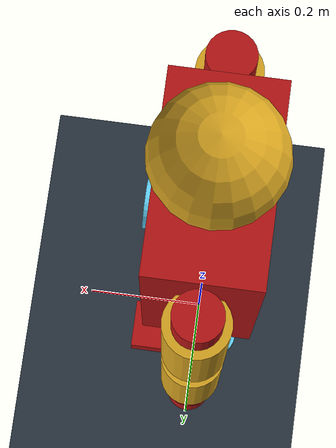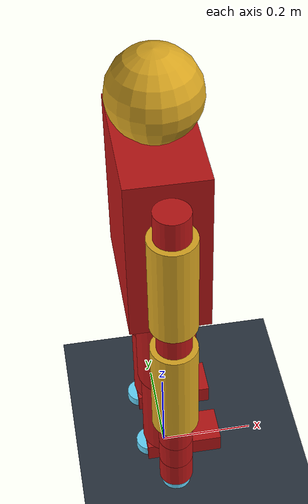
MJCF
<mujoco model="iron_man_suit">
  <compiler angle="radian" />

  <worldbody>
    <light pos="1.5 -2 3" dir="-0.4 0.5 -0.8" diffuse="0.9 0.9 0.9" castshadow="true" /><geom name="floor" type="plane" size="20 20 0.1" material="grid" contype="1" conaffinity="1" /><body name="iron_man_suit_base" pos="0 0 0.0800"><freejoint name="root" /><geom size="0.08 0.14 0.18" pos="0 0 0.62" type="box" rgba="0.72 0.08 0.08 1" />
    <geom size="0.035 0.0075" pos="0.085 0 0.62" quat="0.707107 0 0.707107 0" type="cylinder" rgba="0.4 0.85 1 1" />
    <geom size="0.02 0.03 0.015" pos="0 0 0.05" type="box" rgba="0.1 0.7 0.4 1" />
    <body name="head" pos="0 0 0.89">
      <inertial pos="0 0 0.00115177" mass="1.40653" diaginertia="0.00454313 0.00453813 0.004466" />
      <joint name="neck_joint" range="-1.2 1.2" actuatorfrcrange="-50 50" damping="0.1" />
      <geom size="0.09" rgba="0.85 0.65 0.13 1" />
      <geom size="0.02 0.03 0.015" pos="0 0 0.05" type="box" rgba="0.1 0.7 0.4 1" />
    </body>
    <body name="left_shoulder" pos="0 0.175 0.77">
      <inertial pos="0 0 -0.03" quat="0.5 0.5 -0.5 0.5" mass="0.103908" diaginertia="6.4e-05 6.3e-05 6.3e-05" />
      <joint name="left_arm_joint_1" range="-2.6 2.6" actuatorfrcrange="-50 50" damping="0.1" axis="0 1 0" />
      <geom size="0.035 0.03" pos="0 0 -0.03" type="cylinder" rgba="0.72 0.08 0.08 1" />
      <body name="left_upper_arm" pos="0 0 -0.06">
        <inertial pos="0 0 -0.11" mass="0.380997" diaginertia="0.001749 0.001749 0.000425" />
        <joint name="left_arm_joint_2" range="-2.6 2.6" actuatorfrcrange="-50 50" damping="0.1" axis="1 0 0" />
        <geom size="0.04725 0.11" pos="0 0 -0.11" type="cylinder" rgba="0.85 0.65 0.13 1" />
        <body name="left_elbow" pos="0 0 -0.22">
          <inertial pos="0 0 -0.03" quat="0.5 0.5 -0.5 0.5" mass="0.103908" diaginertia="6.4e-05 6.3e-05 6.3e-05" />
          <joint name="left_arm_joint_3" range="-2.6 2.6" actuatorfrcrange="-50 50" damping="0.1" axis="0 1 0" />
          <geom size="0.035 0.03" pos="0 0 -0.03" type="cylinder" rgba="0.72 0.08 0.08 1" />
          <body name="left_forearm" pos="0 0 -0.06">
            <inertial pos="0 0 -0.11" mass="0.380997" diaginertia="0.001749 0.001749 0.000425" />
            <joint name="left_arm_joint_4" range="-2.6 2.6" actuatorfrcrange="-50 50" damping="0.1" axis="1 0 0" />
            <geom size="0.04725 0.11" pos="0 0 -0.11" type="cylinder" rgba="0.85 0.65 0.13 1" />
            <body name="left_wrist_1" pos="0 0 -0.22">
              <inertial pos="0 0 -0.03" quat="0.5 0.5 -0.5 0.5" mass="0.103908" diaginertia="6.4e-05 6.3e-05 6.3e-05" />
              <joint name="left_arm_joint_5" range="-2.6 2.6" actuatorfrcrange="-50 50" damping="0.1" axis="0 1 0" />
              <geom size="0.035 0.03" pos="0 0 -0.03" type="cylinder" rgba="0.72 0.08 0.08 1" />
              <body name="left_wrist_2" pos="0 0 -0.06">
                <inertial pos="0 0 -0.03" quat="0.5 0.5 -0.5 0.5" mass="0.103908" diaginertia="6.4e-05 6.3e-05 6.3e-05" />
                <joint name="left_arm_joint_6" range="-2.6 2.6" actuatorfrcrange="-50 50" damping="0.1" axis="1 0 0" />
                <geom size="0.035 0.03" pos="0 0 -0.03" type="cylinder" rgba="0.72 0.08 0.08 1" />
                <body name="left_wrist_3" pos="0 0 -0.06">
                  <inertial pos="0 0 -0.0378689" mass="0.129355" diaginertia="0.000102706 0.000102706 7.5e-05" />
                  <joint name="left_arm_joint_7" range="-2.6 2.6" actuatorfrcrange="-50 50" damping="0.1" axis="0 1 0" />
                  <geom size="0.035 0.03" pos="0 0 -0.03" type="cylinder" rgba="0.72 0.08 0.08 1" />
                  <geom size="0.03 0.01" pos="0 0 -0.07" type="cylinder" rgba="0.4 0.85 1 1" />
                </body>
              </body>
            </body>
          </body>
        </body>
      </body>
    </body>
    <body name="right_shoulder" pos="0 -0.175 0.77">
      <inertial pos="0 0 -0.03" quat="0.5 0.5 -0.5 0.5" mass="0.103908" diaginertia="6.4e-05 6.3e-05 6.3e-05" />
      <joint name="right_arm_joint_1" range="-2.6 2.6" actuatorfrcrange="-50 50" damping="0.1" axis="0 1 0" />
      <geom size="0.035 0.03" pos="0 0 -0.03" type="cylinder" rgba="0.72 0.08 0.08 1" />
      <body name="right_upper_arm" pos="0 0 -0.06">
        <inertial pos="0 0 -0.11" mass="0.380997" diaginertia="0.001749 0.001749 0.000425" />
        <joint name="right_arm_joint_2" range="-2.6 2.6" actuatorfrcrange="-50 50" damping="0.1" axis="1 0 0" />
        <geom size="0.04725 0.11" pos="0 0 -0.11" type="cylinder" rgba="0.85 0.65 0.13 1" />
        <body name="right_elbow" pos="0 0 -0.22">
          <inertial pos="0 0 -0.03" quat="0.5 0.5 -0.5 0.5" mass="0.103908" diaginertia="6.4e-05 6.3e-05 6.3e-05" />
          <joint name="right_arm_joint_3" range="-2.6 2.6" actuatorfrcrange="-50 50" damping="0.1" axis="0 1 0" />
          <geom size="0.035 0.03" pos="0 0 -0.03" type="cylinder" rgba="0.72 0.08 0.08 1" />
          <body name="right_forearm" pos="0 0 -0.06">
            <inertial pos="0 0 -0.11" mass="0.380997" diaginertia="0.001749 0.001749 0.000425" />
            <joint name="right_arm_joint_4" range="-2.6 2.6" actuatorfrcrange="-50 50" damping="0.1" axis="1 0 0" />
            <geom size="0.04725 0.11" pos="0 0 -0.11" type="cylinder" rgba="0.85 0.65 0.13 1" />
            <body name="right_wrist_1" pos="0 0 -0.22">
              <inertial pos="0 0 -0.03" quat="0.5 0.5 -0.5 0.5" mass="0.103908" diaginertia="6.4e-05 6.3e-05 6.3e-05" />
              <joint name="right_arm_joint_5" range="-2.6 2.6" actuatorfrcrange="-50 50" damping="0.1" axis="0 1 0" />
              <geom size="0.035 0.03" pos="0 0 -0.03" type="cylinder" rgba="0.72 0.08 0.08 1" />
              <body name="right_wrist_2" pos="0 0 -0.06">
                <inertial pos="0 0 -0.03" quat="0.5 0.5 -0.5 0.5" mass="0.103908" diaginertia="6.4e-05 6.3e-05 6.3e-05" />
                <joint name="right_arm_joint_6" range="-2.6 2.6" actuatorfrcrange="-50 50" damping="0.1" axis="1 0 0" />
                <geom size="0.035 0.03" pos="0 0 -0.03" type="cylinder" rgba="0.72 0.08 0.08 1" />
                <body name="right_wrist_3" pos="0 0 -0.06">
                  <inertial pos="0 0 -0.0378689" mass="0.129355" diaginertia="0.000102706 0.000102706 7.5e-05" />
                  <joint name="right_arm_joint_7" range="-2.6 2.6" actuatorfrcrange="-50 50" damping="0.1" axis="0 1 0" />
                  <geom size="0.035 0.03" pos="0 0 -0.03" type="cylinder" rgba="0.72 0.08 0.08 1" />
                  <geom size="0.03 0.01" pos="0 0 -0.07" type="cylinder" rgba="0.4 0.85 1 1" />
                </body>
              </body>
            </body>
          </body>
        </body>
      </body>
    </body>
    <body name="left_thigh" pos="0 0.07 0.44">
      <inertial pos="0 0 -0.1" mass="0.572555" diaginertia="0.002437 0.002437 0.001057" />
      <joint name="left_hip_joint" range="-1.6 1.6" actuatorfrcrange="-50 50" damping="0.1" axis="0 1 0" />
      <geom size="0.06075 0.1" pos="0 0 -0.1" type="cylinder" rgba="0.72 0.08 0.08 1" />
      <body name="left_shin" pos="0 0 -0.2">
        <inertial pos="0 0 -0.1" mass="0.452389" diaginertia="0.001838 0.001838 0.00066" />
        <joint name="left_knee_joint" range="0 2.4" actuatorfrcrange="-50 50" damping="0.1" axis="0 1 0" />
        <geom size="0.054 0.1" pos="0 0 -0.1" type="cylinder" rgba="0.72 0.08 0.08 1" />
        <body name="left_foot" pos="0 0 -0.2">
          <inertial pos="0.0230377 0 -0.0209946" quat="0 0.697168 0 0.716908" mass="0.255847" diaginertia="0.000737736 0.00064358 0.000162844" />
          <joint name="left_ankle_joint" range="-0.8 0.8" actuatorfrcrange="-50 50" damping="0.1" axis="0 1 0" />
          <geom size="0.08 0.04 0.02" pos="0.03 0 -0.02" type="box" rgba="0.72 0.08 0.08 1" />
          <geom size="0.03 0.01" pos="-0.04 0 -0.03" type="cylinder" rgba="0.4 0.85 1 1" />
        </body>
      </body>
    </body>
    <body name="right_thigh" pos="0 -0.07 0.44">
      <inertial pos="0 0 -0.1" mass="0.572555" diaginertia="0.002437 0.002437 0.001057" />
      <joint name="right_hip_joint" range="-1.6 1.6" actuatorfrcrange="-50 50" damping="0.1" axis="0 1 0" />
      <geom size="0.06075 0.1" pos="0 0 -0.1" type="cylinder" rgba="0.72 0.08 0.08 1" />
      <body name="right_shin" pos="0 0 -0.2">
        <inertial pos="0 0 -0.1" mass="0.452389" diaginertia="0.001838 0.001838 0.00066" />
        <joint name="right_knee_joint" range="0 2.4" actuatorfrcrange="-50 50" damping="0.1" axis="0 1 0" />
        <geom size="0.054 0.1" pos="0 0 -0.1" type="cylinder" rgba="0.72 0.08 0.08 1" />
        <body name="right_foot" pos="0 0 -0.2">
          <inertial pos="0.0230377 0 -0.0209946" quat="0 0.697168 0 0.716908" mass="0.255847" diaginertia="0.000737736 0.00064358 0.000162844" />
          <joint name="right_ankle_joint" range="-0.8 0.8" actuatorfrcrange="-50 50" damping="0.1" axis="0 1 0" />
          <geom size="0.08 0.04 0.02" pos="0.03 0 -0.02" type="box" rgba="0.72 0.08 0.08 1" />
          <geom size="0.03 0.01" pos="-0.04 0 -0.03" type="cylinder" rgba="0.4 0.85 1 1" />
        </body>
      </body>
    </body>
  <inertial pos="0 0 0.62" mass="7.2576" diaginertia="0.125798 0.093865 0.062899" /></body></worldbody>
<option timestep="0.002" gravity="0 0 -9.81" integrator="implicitfast" /><default><joint damping="0.6" armature="0.01" frictionloss="0.05" /><geom friction="1 0.005 0.0001" condim="3" solref="0.005 1" solimp="0.95 0.99 0.001" contype="1" conaffinity="0" /><position kp="83.0" forcerange="-111 111" /></default><asset><texture type="skybox" builtin="gradient" rgb1="0.35 0.45 0.6" rgb2="0.05 0.06 0.08" width="256" height="256" /><texture name="grid" type="2d" builtin="checker" rgb1="0.2 0.25 0.3" rgb2="0.12 0.15 0.19" width="512" height="512" /><material name="grid" texture="grid" texrepeat="10 10" reflectance="0.15" /></asset><visual><headlight diffuse="0.7 0.7 0.7" ambient="0.35 0.35 0.35" /><global offwidth="1280" offheight="720" /></visual><actuator><position name="act_neck_joint" joint="neck_joint" ctrlrange="-1.2 1.2" ctrllimited="true" /><position name="act_left_arm_joint_1" joint="left_arm_joint_1" ctrlrange="-2.6 2.6" ctrllimited="true" /><position name="act_left_arm_joint_2" joint="left_arm_joint_2" ctrlrange="-2.6 2.6" ctrllimited="true" /><position name="act_left_arm_joint_3" joint="left_arm_joint_3" ctrlrange="-2.6 2.6" ctrllimited="true" /><position name="act_left_arm_joint_4" joint="left_arm_joint_4" ctrlrange="-2.6 2.6" ctrllimited="true" /><position name="act_left_arm_joint_5" joint="left_arm_joint_5" ctrlrange="-2.6 2.6" ctrllimited="true" /><position name="act_left_arm_joint_6" joint="left_arm_joint_6" ctrlrange="-2.6 2.6" ctrllimited="true" /><position name="act_left_arm_joint_7" joint="left_arm_joint_7" ctrlrange="-2.6 2.6" ctrllimited="true" /><position name="act_right_arm_joint_1" joint="right_arm_joint_1" ctrlrange="-2.6 2.6" ctrllimited="true" /><position name="act_right_arm_joint_2" joint="right_arm_joint_2" ctrlrange="-2.6 2.6" ctrllimited="true" /><position name="act_right_arm_joint_3" joint="right_arm_joint_3" ctrlrange="-2.6 2.6" ctrllimited="true" /><position name="act_right_arm_joint_4" joint="right_arm_joint_4" ctrlrange="-2.6 2.6" ctrllimited="true" /><position name="act_right_arm_joint_5" joint="right_arm_joint_5" ctrlrange="-2.6 2.6" ctrllimited="true" /><position name="act_right_arm_joint_6" joint="right_arm_joint_6" ctrlrange="-2.6 2.6" ctrllimited="true" /><position name="act_right_arm_joint_7" joint="right_arm_joint_7" ctrlrange="-2.6 2.6" ctrllimited="true" /><position name="act_left_hip_joint" joint="left_hip_joint" ctrlrange="-1.6 1.6" ctrllimited="true" /><position name="act_left_knee_joint" joint="left_knee_joint" ctrlrange="0 2.4" ctrllimited="true" /><position name="act_left_ankle_joint" joint="left_ankle_joint" ctrlrange="-0.8 0.8" ctrllimited="true" /><position name="act_right_hip_joint" joint="right_hip_joint" ctrlrange="-1.6 1.6" ctrllimited="true" /><position name="act_right_knee_joint" joint="right_knee_joint" ctrlrange="0 2.4" ctrllimited="true" /><position name="act_right_ankle_joint" joint="right_ankle_joint" ctrlrange="-0.8 0.8" ctrllimited="true" /></actuator></mujoco>
